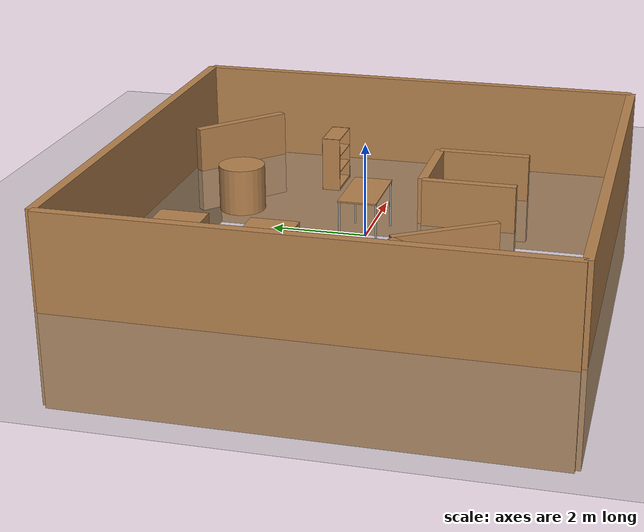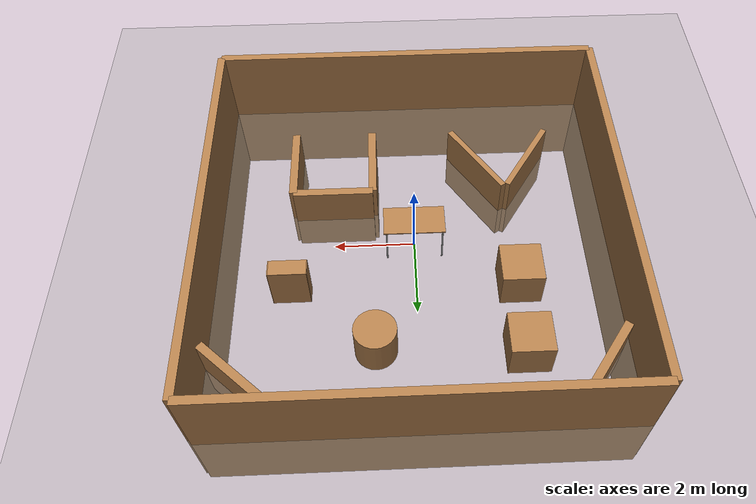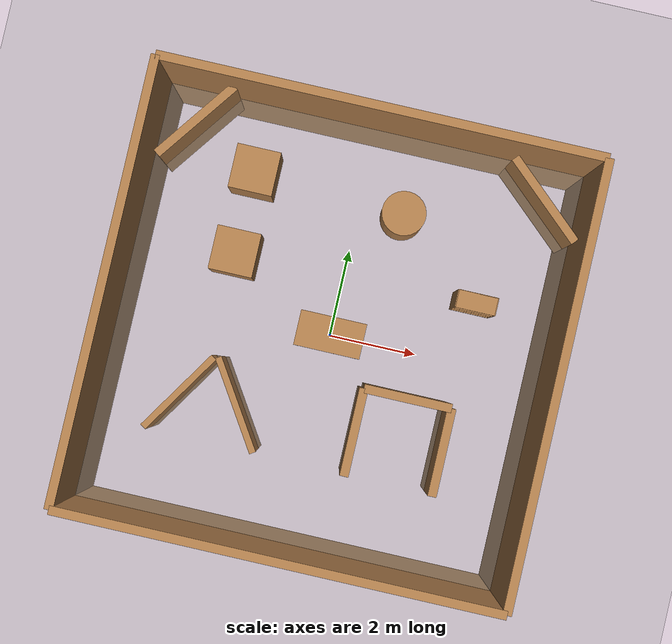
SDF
<sdf version="1.6">
 <world name="default">
  <light name="sun" type="directional">
   <pose>0 0 10 0 -0 0</pose>
   <diffuse>0.8 0.8 0.8 1</diffuse>
   <specular>0.2 0.2 0.2 1</specular>
   <attenuation>
    <range>1000</range>
    <constant>0.9</constant>
    <linear>0.01</linear>
    <quadratic>0.001</quadratic>
   </attenuation>
   <direction>0.5 0.1 -0.9</direction>
  </light>
  <scene><ambient>0.4 0.4 0.4 1</ambient><background>0.7 0.7 0.7 1</background><shadows>1</shadows></scene>
  <physics name="default_physics" default="0" type="ode">
   <max_step_size>0.001</max_step_size>
   <real_time_factor>1</real_time_factor>
   <real_time_update_rate>1000</real_time_update_rate>
  </physics>
  <model name="ground_plane_0">
   <static>1</static>
   <link name="link">
    <collision name="collision">
     <geometry><plane><normal>0 0 1</normal><size>100 100</size></plane></geometry>
     <surface><friction><ode><mu>100</mu><mu2>50</mu2></ode></friction></surface>
    </collision>
    <visual name="visual">
     <cast_shadows>0</cast_shadows>
     <geometry><plane><normal>0 0 1</normal><size>100 100</size></plane></geometry>
     <material>
      <script><uri>file://media/materials/scripts/gazebo.material</uri><name>Gazebo/Grey</name></script>
     </material>
    </visual>
    <velocity_decay><linear>0</linear><angular>0</angular></velocity_decay>
   </link>
   <pose>0.497681 0 0 0 -0 0</pose>
  </model>
  <gravity>0 0 -9.8</gravity>
  <magnetic_field>6e-06 2.3e-05 -4.2e-05</magnetic_field>
  <atmosphere type="adiabatic"/>
  <spherical_coordinates>
   <surface_model>EARTH_WGS84</surface_model>
   <latitude_deg>0</latitude_deg>
   <longitude_deg>0</longitude_deg>
   <elevation>0</elevation>
   <heading_deg>0</heading_deg>
  </spherical_coordinates>
  <model name="South">
   <pose>0 -5 0 0 -0 0</pose>
   <link name="South">
    <collision name="South_Collision"><geometry><box><size>10 0.15 4</size></box></geometry></collision>
    <visual name="South_Visual">
     <geometry><box><size>10 0.2 4</size></box></geometry>
     <material>
      <script><uri>file://media/materials/scripts/gazebo.material</uri><name>Gazebo/Wood</name></script>
      <ambient>1 1 1 1</ambient>
     </material>
     <meta><layer>0</layer></meta>
    </visual>
   </link>
   <static>1</static>
  </model>
  <audio><device>default</device></audio>
  <model name="North">
   <pose>0 5 0 0 -0 0</pose>
   <link name="North">
    <collision name="North_Collision"><geometry><box><size>10 0.15 4</size></box></geometry></collision>
    <visual name="North_Visual">
     <geometry><box><size>10 0.2 4</size></box></geometry>
     <material>
      <script><uri>file://media/materials/scripts/gazebo.material</uri><name>Gazebo/Wood</name></script>
      <ambient>1 1 1 1</ambient>
     </material>
     <meta><layer>0</layer></meta>
    </visual>
   </link>
   <static>1</static>
  </model>
  <model name="West">
   <pose>-5 0 0 0 -0 1.57</pose>
   <link name="West">
    <collision name="West_Collision"><geometry><box><size>10 0.15 4</size></box></geometry></collision>
    <visual name="West_Visual">
     <geometry><box><size>10 0.2 4</size></box></geometry>
     <material>
      <script><uri>file://media/materials/scripts/gazebo.material</uri><name>Gazebo/Wood</name></script>
      <ambient>1 1 1 1</ambient>
     </material>
     <meta><layer>0</layer></meta>
    </visual>
   </link>
   <static>1</static>
  </model>
  <model name="East">
   <pose>5 0 0 0 -0 1.57</pose>
   <link name="East">
    <collision name="East_Collision"><geometry><box><size>10 0.15 4</size></box></geometry></collision>
    <visual name="East_Visual">
     <geometry><box><size>10 0.2 4</size></box></geometry>
     <material>
      <script><uri>file://media/materials/scripts/gazebo.material</uri><name>Gazebo/Wood</name></script>
      <ambient>1 1 1 1</ambient>
     </material>
     <meta><layer>0</layer></meta>
    </visual>
   </link>
   <static>1</static>
  </model>
  <model name="table">
   <static>1</static>
   <link name="link">
    <collision name="surface">
     <pose>0 0 1 0 -0 0</pose>
     <geometry><box><size>1.5 0.8 0.03</size></box></geometry>
     <surface><friction><ode><mu>0.6</mu><mu2>0.6</mu2></ode></friction></surface>
    </collision>
    <visual name="visual1">
     <pose>0 0 1 0 -0 0</pose>
     <geometry><box><size>1.5 0.8 0.03</size></box></geometry>
     <material>
      <script><uri>file://media/materials/scripts/gazebo.material</uri><name>Gazebo/Wood</name></script>
     </material>
    </visual>
    <collision name="front_left_leg">
     <pose>0.68 0.38 0.5 0 -0 0</pose>
     <geometry><cylinder><radius>0.02</radius><length>1</length></cylinder></geometry>
    </collision>
    <visual name="front_left_leg">
     <pose>0.68 0.38 0.5 0 -0 0</pose>
     <geometry><cylinder><radius>0.02</radius><length>1</length></cylinder></geometry>
     <material>
      <script><uri>file://media/materials/scripts/gazebo.material</uri><name>Gazebo/Grey</name></script>
     </material>
    </visual>
    <collision name="front_right_leg">
     <pose>0.68 -0.38 0.5 0 -0 0</pose>
     <geometry><cylinder><radius>0.02</radius><length>1</length></cylinder></geometry>
    </collision>
    <visual name="front_right_leg">
     <pose>0.68 -0.38 0.5 0 -0 0</pose>
     <geometry><cylinder><radius>0.02</radius><length>1</length></cylinder></geometry>
     <material>
      <script><uri>file://media/materials/scripts/gazebo.material</uri><name>Gazebo/Grey</name></script>
     </material>
    </visual>
    <collision name="back_right_leg">
     <pose>-0.68 -0.38 0.5 0 -0 0</pose>
     <geometry><cylinder><radius>0.02</radius><length>1</length></cylinder></geometry>
    </collision>
    <visual name="back_right_leg">
     <pose>-0.68 -0.38 0.5 0 -0 0</pose>
     <geometry><cylinder><radius>0.02</radius><length>1</length></cylinder></geometry>
     <material>
      <script><uri>file://media/materials/scripts/gazebo.material</uri><name>Gazebo/Grey</name></script>
     </material>
    </visual>
    <collision name="back_left_leg">
     <pose>-0.68 0.38 0.5 0 -0 0</pose>
     <geometry><cylinder><radius>0.02</radius><length>1</length></cylinder></geometry>
    </collision>
    <visual name="back_left_leg">
     <pose>-0.68 0.38 0.5 0 -0 0</pose>
     <geometry><cylinder><radius>0.02</radius><length>1</length></cylinder></geometry>
     <material>
      <script><uri>file://media/materials/scripts/gazebo.material</uri><name>Gazebo/Grey</name></script>
     </material>
    </visual>
   </link>
  </model>
  <model name="bookshelf">
   <static>1</static>
   <link name="link">
    <inertial><mass>1</mass></inertial>
    <collision name="back">
     <pose>0 0.005 0.6 0 -0 0</pose>
     <geometry><box><size>0.9 0.01 1.2</size></box></geometry>
    </collision>
    <visual name="visual1">
     <pose>0 0.005 0.6 0 -0 0</pose>
     <geometry><box><size>0.9 0.01 1.2</size></box></geometry>
     <material>
      <script><uri>file://media/materials/scripts/gazebo.material</uri><name>Gazebo/Wood</name></script>
     </material>
    </visual>
    <collision name="left_side">
     <pose>0.45 -0.195 0.6 0 -0 0</pose>
     <geometry><box><size>0.02 0.4 1.2</size></box></geometry>
    </collision>
    <visual name="visual2">
     <pose>0.45 -0.195 0.6 0 -0 0</pose>
     <geometry><box><size>0.02 0.4 1.2</size></box></geometry>
     <material>
      <script><uri>file://media/materials/scripts/gazebo.material</uri><name>Gazebo/Wood</name></script>
     </material>
    </visual>
    <collision name="right_side">
     <pose>-0.45 -0.195 0.6 0 -0 0</pose>
     <geometry><box><size>0.02 0.4 1.2</size></box></geometry>
    </collision>
    <visual name="visual3">
     <pose>-0.45 -0.195 0.6 0 -0 0</pose>
     <geometry><box><size>0.02 0.4 1.2</size></box></geometry>
     <material>
      <script><uri>file://media/materials/scripts/gazebo.material</uri><name>Gazebo/Wood</name></script>
     </material>
    </visual>
    <collision name="bottom">
     <pose>0 -0.195 0.03 0 -0 0</pose>
     <geometry><box><size>0.88 0.4 0.06</size></box></geometry>
    </collision>
    <visual name="visual4">
     <pose>0 -0.195 0.03 0 -0 0</pose>
     <geometry><box><size>0.88 0.4 0.06</size></box></geometry>
     <material>
      <script><uri>file://media/materials/scripts/gazebo.material</uri><name>Gazebo/Wood</name></script>
     </material>
    </visual>
    <collision name="top">
     <pose>0 -0.195 1.19 0 -0 0</pose>
     <geometry><box><size>0.88 0.4 0.02</size></box></geometry>
    </collision>
    <visual name="visual5">
     <pose>0 -0.195 1.19 0 -0 0</pose>
     <geometry><box><size>0.88 0.4 0.02</size></box></geometry>
     <material>
      <script><uri>file://media/materials/scripts/gazebo.material</uri><name>Gazebo/Wood</name></script>
     </material>
    </visual>
    <collision name="low_shelf">
     <pose>0 -0.195 0.43 0 -0 0</pose>
     <geometry><box><size>0.88 0.4 0.02</size></box></geometry>
    </collision>
    <visual name="visual6">
     <pose>0 -0.195 0.43 0 -0 0</pose>
     <geometry><box><size>0.88 0.4 0.02</size></box></geometry>
     <material>
      <script><uri>file://media/materials/scripts/gazebo.material</uri><name>Gazebo/Wood</name></script>
     </material>
    </visual>
    <collision name="high_shelf">
     <pose>0 -0.195 0.8 0 -0 0</pose>
     <geometry><box><size>0.88 0.4 0.02</size></box></geometry>
    </collision>
    <visual name="visual7">
     <pose>0 -0.195 0.8 0 -0 0</pose>
     <geometry><box><size>0.88 0.4 0.02</size></box></geometry>
     <material>
      <script><uri>file://media/materials/scripts/gazebo.material</uri><name>Gazebo/Wood</name></script>
     </material>
    </visual>
   </link>
   <pose>3 1.6 0 0 -0 0</pose>
  </model>
  <model name="unit_cylinder">
   <pose>1 3 0.5 0 -0 0</pose>
   <link name="link">
    <inertial>
     <mass>1</mass>
     <inertia><ixx>0.145833</ixx><ixy>0</ixy><ixz>0</ixz><iyy>0.145833</iyy><iyz>0</iyz><izz>0.125</izz></inertia>
    </inertial>
    <collision name="collision">
     <geometry><cylinder><radius>0.5</radius><length>1</length></cylinder></geometry>
    </collision>
    <visual name="visual">
     <geometry><cylinder><radius>0.5</radius><length>1</length></cylinder></geometry>
     <material>
      <script><name>Gazebo/Wood</name><uri>file://media/materials/scripts/gazebo.material</uri></script>
     </material>
    </visual>
   </link>
  </model>
  <model name="v1">
   <pose>-3 -2 0 0 -0 1</pose>
   <link name="v1">
    <collision name="v1_Collision"><geometry><box><size>2.2 0.15 2</size></box></geometry></collision>
    <visual name="v1_Visual">
     <geometry><box><size>2.2 0.15 2</size></box></geometry>
     <material>
      <script><uri>file://media/materials/scripts/gazebo.material</uri><name>Gazebo/Wood</name></script>
      <ambient>1 1 1 1</ambient>
     </material>
     <meta><layer>0</layer></meta>
    </visual>
   </link>
   <static>1</static>
  </model>
  <model name="v2">
   <pose>-1.7 -2 0 0 0 -1</pose>
   <link name="v2">
    <collision name="v2_Collision"><geometry><box><size>2.25327 0.15 2</size></box></geometry></collision>
    <visual name="v2_Visual">
     <geometry><box><size>2.25327 0.15 2</size></box></geometry>
     <material>
      <script><uri>file://media/materials/scripts/gazebo.material</uri><name>Gazebo/Wood</name></script>
      <ambient>1 1 1 1</ambient>
     </material>
     <meta><layer>0</layer></meta>
    </visual>
   </link>
   <static>1</static>
  </model>
  <model name="room">
   <pose>1 -2 0 0 -0 1.57</pose>
   <link name="room">
    <collision name="room_Collision"><geometry><box><size>2 0.15 2</size></box></geometry></collision>
    <visual name="room_Visual">
     <geometry><box><size>2 0.2 2</size></box></geometry>
     <material>
      <script><uri>file://media/materials/scripts/gazebo.material</uri><name>Gazebo/Wood</name></script>
      <ambient>1 1 1 1</ambient>
     </material>
     <meta><layer>0</layer></meta>
    </visual>
   </link>
   <static>1</static>
  </model>
  <model name="room3">
   <pose>3 -2 0 0 -0 1.57</pose>
   <link name="room3">
    <collision name="room3_Collision"><geometry><box><size>2 0.15 2</size></box></geometry></collision>
    <visual name="room3_Visual">
     <geometry><box><size>2 0.2 2</size></box></geometry>
     <material>
      <script><uri>file://media/materials/scripts/gazebo.material</uri><name>Gazebo/Wood</name></script>
      <ambient>1 1 1 1</ambient>
     </material>
     <meta><layer>0</layer></meta>
    </visual>
   </link>
   <static>1</static>
  </model>
  <model name="room2">
   <pose>2 -1 0 0 -0 0</pose>
   <link name="room2">
    <collision name="room2_Collision"><geometry><box><size>2 0.15 2</size></box></geometry></collision>
    <visual name="room2_Visual">
     <geometry><box><size>2 0.2 2</size></box></geometry>
     <material>
      <script><uri>file://media/materials/scripts/gazebo.material</uri><name>Gazebo/Wood</name></script>
      <ambient>1 1 1 1</ambient>
     </material>
     <meta><layer>0</layer></meta>
    </visual>
   </link>
   <static>1</static>
  </model>
  <model name="edger">
   <pose>4 4 0 0 0 -0.735117</pose>
   <link name="edger">
    <collision name="edger_Collision"><geometry><box><size>2.3 0.15 2</size></box></geometry></collision>
    <visual name="edger_Visual">
     <geometry><box><size>2.3 0.2 2</size></box></geometry>
     <material>
      <script><uri>file://media/materials/scripts/gazebo.material</uri><name>Gazebo/Wood</name></script>
      <ambient>1 1 1 1</ambient>
     </material>
     <meta><layer>0</layer></meta>
    </visual>
   </link>
   <static>1</static>
  </model>
  <model name="edgel">
   <pose>-4 4 0 0 -0 0.938492</pose>
   <link name="edgel">
    <collision name="edgel_Collision"><geometry><box><size>2.3 0.15 2</size></box></geometry></collision>
    <visual name="edgel_Visual">
     <geometry><box><size>2.3 0.2 2</size></box></geometry>
     <material>
      <script><uri>file://media/materials/scripts/gazebo.material</uri><name>Gazebo/Wood</name></script>
      <ambient>1 1 1 1</ambient>
     </material>
     <meta><layer>0</layer></meta>
    </visual>
   </link>
   <static>1</static>
  </model>
  <model name="unit_box">
   <pose>-2.46857 3.2078 0.49967 0.00066 -0 0</pose>
   <link name="link">
    <inertial>
     <mass>1</mass>
     <inertia>
      <ixx>0.166667</ixx>
      <ixy>0</ixy>
      <ixz>0</ixz>
      <iyy>0.166667</iyy>
      <iyz>0</iyz>
      <izz>0.166667</izz>
     </inertia>
    </inertial>
    <collision name="collision"><geometry><box><size>1 1 1</size></box></geometry></collision>
    <visual name="visual">
     <geometry><box><size>1 1 1</size></box></geometry>
     <material>
      <script><name>Gazebo/Wood</name><uri>file://media/materials/scripts/gazebo.material</uri></script>
     </material>
    </visual>
   </link>
  </model>
  <model name="unit_box_0">
   <pose>-2.48883 1.33217 0.49967 0.00066 -0 0</pose>
   <link name="link">
    <inertial>
     <mass>1</mass>
     <inertia>
      <ixx>0.166667</ixx>
      <ixy>0</ixy>
      <ixz>0</ixz>
      <iyy>0.166667</iyy>
      <iyz>0</iyz>
      <izz>0.166667</izz>
     </inertia>
    </inertial>
    <collision name="collision"><geometry><box><size>1 1 1</size></box></geometry></collision>
    <visual name="visual">
     <geometry><box><size>1 1 1</size></box></geometry>
     <material>
      <script><name>Gazebo/Wood</name><uri>file://media/materials/scripts/gazebo.material</uri></script>
     </material>
    </visual>
   </link>
  </model>
 </world>
</sdf>
